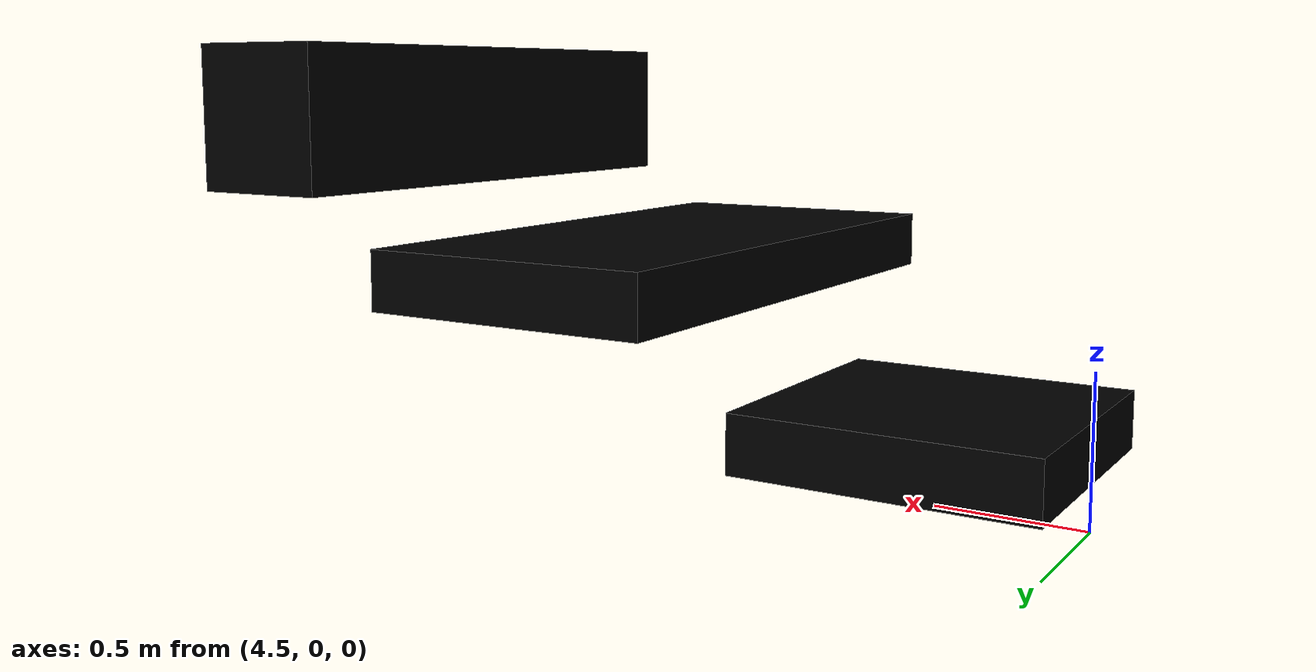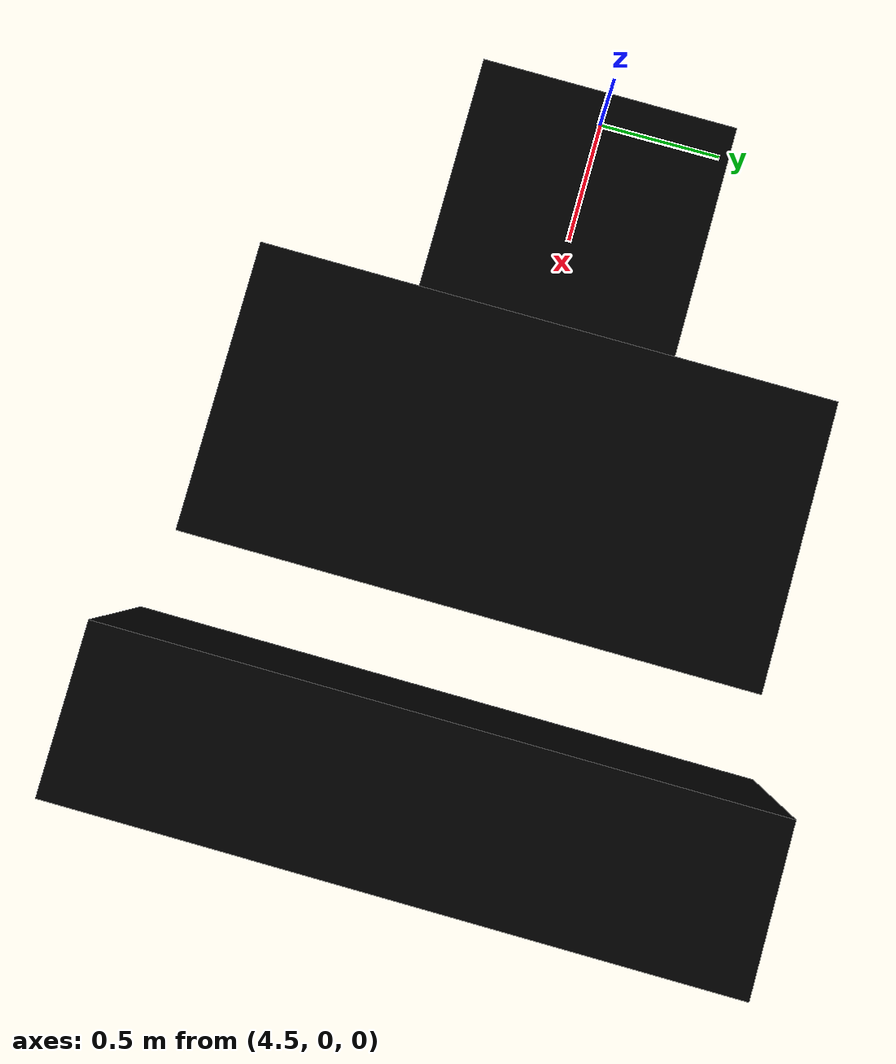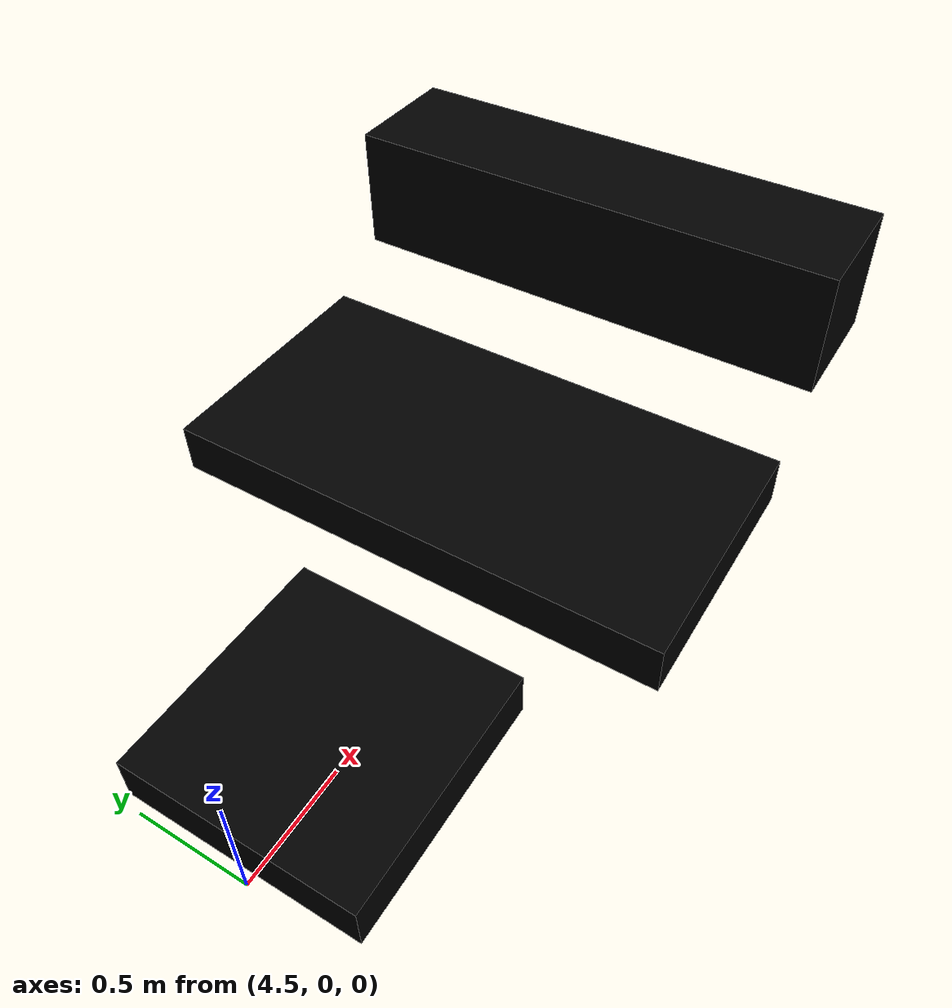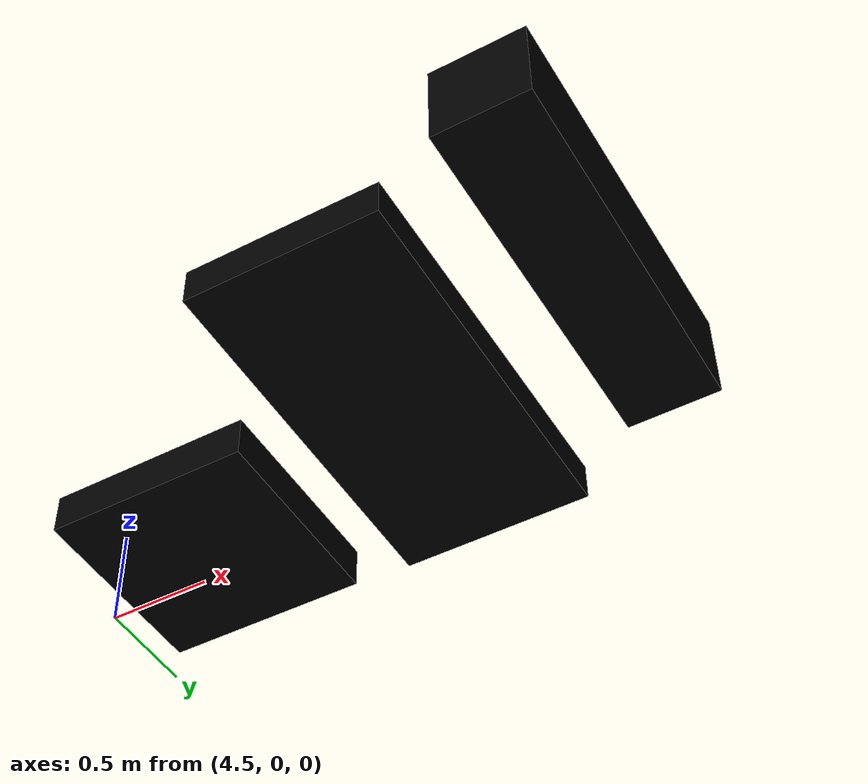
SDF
<?xml version='1.0'?>
<sdf version='1.7'>
  <model name='stairs'>
    <link name='stair_link'>
      <self_collide>0</self_collide>
      <enable_wind>0</enable_wind>
      <kinematic>0</kinematic>
      <pose>0 0 0 0 -0 0</pose>
      <gravity>1</gravity>
      <inertial>
        <mass>1</mass>
        <pose>0 0 0 0 -0 0</pose>
        <inertia>
          <ixx>1</ixx>
          <ixy>0</ixy>
          <ixz>0</ixz>
          <iyy>1</iyy>
          <iyz>0</iyz>
          <izz>1</izz>
        </inertia>
      </inertial>
      <visual name='step1'>
        <pose>5 0 0.25 0 -0 0</pose>
        <geometry>
          <box>
            <size>1 1 0.2</size>
          </box>
        </geometry>
        <material>
          <shader type='pixel'>
            <normal_map>__default__</normal_map>
          </shader>
          <script>
            <name>ModelPreview_1::stair_link::step1_MATERIAL_</name>
          </script>
          <ambient>0 0 0 1</ambient>
          <diffuse>0 0 0 1</diffuse>
          <specular>0 0 0 1</specular>
          <emissive>0 0 0 1</emissive>
        </material>
        <transparency>0</transparency>
        <cast_shadows>1</cast_shadows>
      </visual>
      <visual name='step2'>
        <pose>6 0 0.75 0 -0 0</pose>
        <geometry>
          <box>
            <size>1 2 0.2</size>
          </box>
        </geometry>
        <material>
          <shader type='pixel'>
            <normal_map>__default__</normal_map>
          </shader>
          <script>
            <name>ModelPreview_1::stair_link::step2_MATERIAL_</name>
          </script>
          <ambient>0 0 0 1</ambient>
          <diffuse>0 0 0 1</diffuse>
          <specular>0 0 0 1</specular>
          <emissive>0 0 0 1</emissive>
        </material>
        <transparency>0</transparency>
        <cast_shadows>1</cast_shadows>
      </visual>
      <visual name='step3'>
        <pose>7 0 1.25 0 -0 0</pose>
        <geometry>
          <box>
            <size>0.5 2 0.5</size>
          </box>
        </geometry>
        <material>
          <shader type='pixel'>
            <normal_map>__default__</normal_map>
          </shader>
          <script>
            <name>ModelPreview_1::stair_link::step3_MATERIAL_</name>
          </script>
          <ambient>0 0 0 1</ambient>
          <diffuse>0 0 0 1</diffuse>
          <specular>0 0 0 1</specular>
          <emissive>0 0 0 1</emissive>
        </material>
        <transparency>0</transparency>
        <cast_shadows>1</cast_shadows>
      </visual>
      <collision name='step1_col'>
        <laser_retro>0</laser_retro>
        <max_contacts>10</max_contacts>
        <pose>5 0 0.25 0 -0 0</pose>
        <geometry>
          <box>
            <size>1 2 0.5</size>
          </box>
        </geometry>
        <surface>
          <friction>
            <ode>
              <mu>1</mu>
              <mu2>1</mu2>
              <fdir1>0 0 0</fdir1>
              <slip1>0</slip1>
              <slip2>0</slip2>
            </ode>
            <torsional>
              <coefficient>1</coefficient>
              <patch_radius>0</patch_radius>
              <surface_radius>0</surface_radius>
              <use_patch_radius>1</use_patch_radius>
              <ode>
                <slip>0</slip>
              </ode>
            </torsional>
          </friction>
          <bounce>
            <restitution_coefficient>0</restitution_coefficient>
            <threshold>1e+06</threshold>
          </bounce>
          <contact>
            <collide_without_contact>0</collide_without_contact>
            <collide_without_contact_bitmask>1</collide_without_contact_bitmask>
            <collide_bitmask>1</collide_bitmask>
            <ode>
              <soft_cfm>0</soft_cfm>
              <soft_erp>0.2</soft_erp>
              <kp>1e+13</kp>
              <kd>1</kd>
              <max_vel>0.01</max_vel>
              <min_depth>0</min_depth>
            </ode>
            <bullet>
              <split_impulse>1</split_impulse>
              <split_impulse_penetration_threshold>-0.01</split_impulse_penetration_threshold>
              <soft_cfm>0</soft_cfm>
              <soft_erp>0.2</soft_erp>
              <kp>1e+13</kp>
              <kd>1</kd>
            </bullet>
          </contact>
        </surface>
      </collision>
    </link>
    <static>1</static>
    <allow_auto_disable>1</allow_auto_disable>
  </model>
</sdf>
